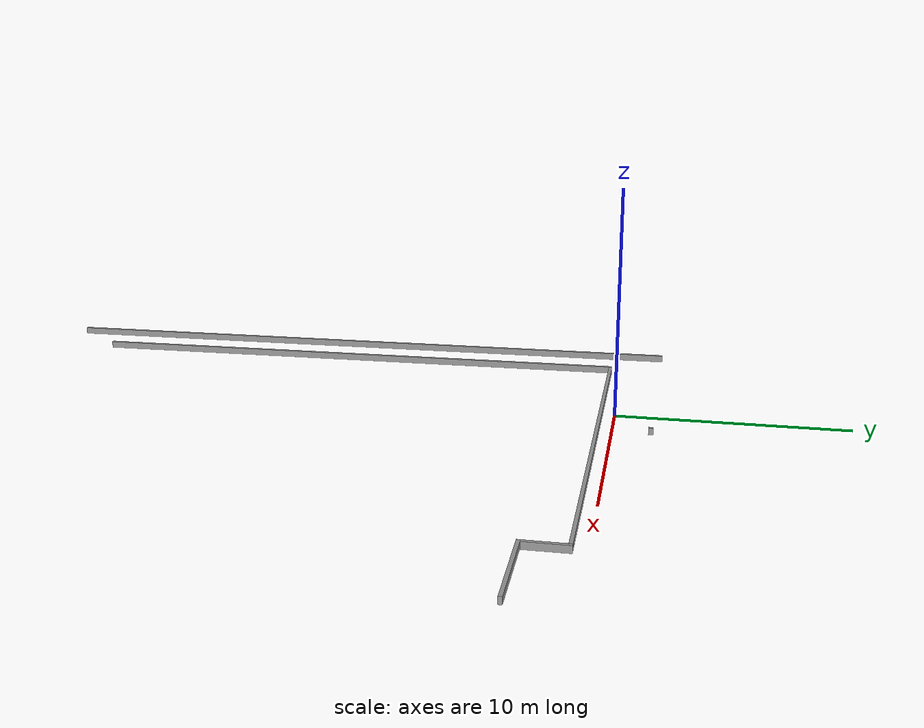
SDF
<?xml version='1.0'?>
<sdf version='1.6'>
  <model name='unit_box_map14'>
    <link name='link'>
      <pose frame=''>3.45997 -0.623895 0 0 -0 0</pose>
      <inertial>
        <mass>1</mass>
        <inertia>
          <ixx>0.166667</ixx>
          <ixy>0</ixy>
          <ixz>0</ixz>
          <iyy>0.166667</iyy>
          <iyz>0</iyz>
          <izz>0.166667</izz>
        </inertia>
        <pose frame=''>0 0 0 0 -0 0</pose>
      </inertial>
      <self_collide>0</self_collide>
      <kinematic>0</kinematic>
      <visual name='visual'>
        <geometry>
          <box>
            <size>20.4 0.15 0.3</size>
          </box>
        </geometry>
        <material>
          <script>
            <name>Gazebo/Grey</name>
            <uri>file://media/materials/scripts/gazebo.material</uri>
          </script>
          <ambient>0.3 0.3 0.3 1</ambient>
          <diffuse>0.7 0.7 0.7 1</diffuse>
          <specular>0.01 0.01 0.01 1</specular>
          <emissive>0 0 0 1</emissive>
          <shader type='vertex'>
            <normal_map>__default__</normal_map>
          </shader>
        </material>
        <pose frame=''>0 0 0 0 -0 0</pose>
        <cast_shadows>1</cast_shadows>
        <transparency>0</transparency>
      </visual>
      <collision name='collision'>
        <laser_retro>0</laser_retro>
        <max_contacts>10</max_contacts>
        <pose frame=''>0 0 0 0 -0 0</pose>
        <geometry>
          <box>
            <size>20.4 0.15 0.3</size>
          </box>
        </geometry>
        <surface>
          <friction>
            <ode>
              <mu>1</mu>
              <mu2>1</mu2>
              <fdir1>0 0 0</fdir1>
              <slip1>0</slip1>
              <slip2>0</slip2>
            </ode>
            <torsional>
              <coefficient>1</coefficient>
              <patch_radius>0</patch_radius>
              <surface_radius>0</surface_radius>
              <use_patch_radius>1</use_patch_radius>
              <ode>
                <slip>0</slip>
              </ode>
            </torsional>
          </friction>
          <bounce>
            <restitution_coefficient>0</restitution_coefficient>
            <threshold>1e+06</threshold>
          </bounce>
          <contact>
            <collide_without_contact>0</collide_without_contact>
            <collide_without_contact_bitmask>1</collide_without_contact_bitmask>
            <collide_bitmask>1</collide_bitmask>
            <ode>
              <soft_cfm>0</soft_cfm>
              <soft_erp>0.2</soft_erp>
              <kp>1e+13</kp>
              <kd>1</kd>
              <max_vel>0.01</max_vel>
              <min_depth>0</min_depth>
            </ode>
            <bullet>
              <split_impulse>1</split_impulse>
              <split_impulse_penetration_threshold>-0.01</split_impulse_penetration_threshold>
              <soft_cfm>0</soft_cfm>
              <soft_erp>0.2</soft_erp>
              <kp>1e+13</kp>
              <kd>1</kd>
            </bullet>
          </contact>
        </surface>
      </collision>
    </link>
    <link name='link_clone_0_clone'>
      <pose frame=''>1.60516 1.62127 0 0 -0 1.5707</pose>
      <inertial>
        <mass>1</mass>
        <inertia>
          <ixx>0.166667</ixx>
          <ixy>0</ixy>
          <ixz>0</ixz>
          <iyy>0.166667</iyy>
          <iyz>0</iyz>
          <izz>0.166667</izz>
        </inertia>
        <pose frame=''>0 0 0 0 -0 0</pose>
      </inertial>
      <self_collide>0</self_collide>
      <kinematic>0</kinematic>
      <visual name='visual'>
        <geometry>
          <box>
            <size>0.2 0.15 0.3</size>
          </box>
        </geometry>
        <material>
          <script>
            <name>Gazebo/Grey</name>
            <uri>file://media/materials/scripts/gazebo.material</uri>
          </script>
          <ambient>0.3 0.3 0.3 1</ambient>
          <diffuse>0.7 0.7 0.7 1</diffuse>
          <specular>0.01 0.01 0.01 1</specular>
          <emissive>0 0 0 1</emissive>
          <shader type='vertex'>
            <normal_map>__default__</normal_map>
          </shader>
        </material>
        <pose frame=''>0 0 0 0 -0 0</pose>
        <cast_shadows>1</cast_shadows>
        <transparency>0</transparency>
      </visual>
      <collision name='collision'>
        <laser_retro>0</laser_retro>
        <max_contacts>10</max_contacts>
        <pose frame=''>0 0 0 0 -0 0</pose>
        <geometry>
          <box>
            <size>0.2 0.15 0.3</size>
          </box>
        </geometry>
        <surface>
          <friction>
            <ode>
              <mu>1</mu>
              <mu2>1</mu2>
              <fdir1>0 0 0</fdir1>
              <slip1>0</slip1>
              <slip2>0</slip2>
            </ode>
            <torsional>
              <coefficient>1</coefficient>
              <patch_radius>0</patch_radius>
              <surface_radius>0</surface_radius>
              <use_patch_radius>1</use_patch_radius>
              <ode>
                <slip>0</slip>
              </ode>
            </torsional>
          </friction>
          <bounce>
            <restitution_coefficient>0</restitution_coefficient>
            <threshold>1e+06</threshold>
          </bounce>
          <contact>
            <collide_without_contact>0</collide_without_contact>
            <collide_without_contact_bitmask>1</collide_without_contact_bitmask>
            <collide_bitmask>1</collide_bitmask>
            <ode>
              <soft_cfm>0</soft_cfm>
              <soft_erp>0.2</soft_erp>
              <kp>1e+13</kp>
              <kd>1</kd>
              <max_vel>0.01</max_vel>
              <min_depth>0</min_depth>
            </ode>
            <bullet>
              <split_impulse>1</split_impulse>
              <split_impulse_penetration_threshold>-0.01</split_impulse_penetration_threshold>
              <soft_cfm>0</soft_cfm>
              <soft_erp>0.2</soft_erp>
              <kp>1e+13</kp>
              <kd>1</kd>
            </bullet>
          </contact>
        </surface>
      </collision>
    </link>
    <link name='link_clone_0_clone_0_clone_clone'>
      <pose frame=''>15.7693 -2.40821 0 0 -0 0</pose>
      <inertial>
        <mass>1</mass>
        <inertia>
          <ixx>0.166667</ixx>
          <ixy>0</ixy>
          <ixz>0</ixz>
          <iyy>0.166667</iyy>
          <iyz>0</iyz>
          <izz>0.166667</izz>
        </inertia>
        <pose frame=''>0 0 0 0 -0 0</pose>
      </inertial>
      <self_collide>0</self_collide>
      <kinematic>0</kinematic>
      <visual name='visual'>
        <geometry>
          <box>
            <size>4.21 0.15 0.3</size>
          </box>
        </geometry>
        <material>
          <script>
            <name>Gazebo/Grey</name>
            <uri>file://media/materials/scripts/gazebo.material</uri>
          </script>
          <ambient>0.3 0.3 0.3 1</ambient>
          <diffuse>0.7 0.7 0.7 1</diffuse>
          <specular>0.01 0.01 0.01 1</specular>
          <emissive>0 0 0 1</emissive>
          <shader type='vertex'>
            <normal_map>__default__</normal_map>
          </shader>
        </material>
        <pose frame=''>0 0 0 0 -0 0</pose>
        <cast_shadows>1</cast_shadows>
        <transparency>0</transparency>
      </visual>
      <collision name='collision'>
        <laser_retro>0</laser_retro>
        <max_contacts>10</max_contacts>
        <pose frame=''>0 0 0 0 -0 0</pose>
        <geometry>
          <box>
            <size>4.21 0.15 0.3</size>
          </box>
        </geometry>
        <surface>
          <friction>
            <ode>
              <mu>1</mu>
              <mu2>1</mu2>
              <fdir1>0 0 0</fdir1>
              <slip1>0</slip1>
              <slip2>0</slip2>
            </ode>
            <torsional>
              <coefficient>1</coefficient>
              <patch_radius>0</patch_radius>
              <surface_radius>0</surface_radius>
              <use_patch_radius>1</use_patch_radius>
              <ode>
                <slip>0</slip>
              </ode>
            </torsional>
          </friction>
          <bounce>
            <restitution_coefficient>0</restitution_coefficient>
            <threshold>1e+06</threshold>
          </bounce>
          <contact>
            <collide_without_contact>0</collide_without_contact>
            <collide_without_contact_bitmask>1</collide_without_contact_bitmask>
            <collide_bitmask>1</collide_bitmask>
            <ode>
              <soft_cfm>0</soft_cfm>
              <soft_erp>0.2</soft_erp>
              <kp>1e+13</kp>
              <kd>1</kd>
              <max_vel>0.01</max_vel>
              <min_depth>0</min_depth>
            </ode>
            <bullet>
              <split_impulse>1</split_impulse>
              <split_impulse_penetration_threshold>-0.01</split_impulse_penetration_threshold>
              <soft_cfm>0</soft_cfm>
              <soft_erp>0.2</soft_erp>
              <kp>1e+13</kp>
              <kd>1</kd>
            </bullet>
          </contact>
        </surface>
      </collision>
    </link>
    <link name='link_clone_0_clone_clone'>
      <pose frame=''>-8.98294 -13.5456 0 0 -0 1.584</pose>
      <inertial>
        <mass>1</mass>
        <inertia>
          <ixx>0.166667</ixx>
          <ixy>0</ixy>
          <ixz>0</ixz>
          <iyy>0.166667</iyy>
          <iyz>0</iyz>
          <izz>0.166667</izz>
        </inertia>
        <pose frame=''>0 0 0 0 -0 0</pose>
      </inertial>
      <self_collide>0</self_collide>
      <kinematic>0</kinematic>
      <visual name='visual'>
        <geometry>
          <box>
            <size>30.7 0.15 0.3</size>
          </box>
        </geometry>
        <material>
          <script>
            <name>Gazebo/Grey</name>
            <uri>file://media/materials/scripts/gazebo.material</uri>
          </script>
          <ambient>0.3 0.3 0.3 1</ambient>
          <diffuse>0.7 0.7 0.7 1</diffuse>
          <specular>0.01 0.01 0.01 1</specular>
          <emissive>0 0 0 1</emissive>
          <shader type='vertex'>
            <normal_map>__default__</normal_map>
          </shader>
        </material>
        <pose frame=''>0 0 0 0 -0 0</pose>
        <cast_shadows>1</cast_shadows>
        <transparency>0</transparency>
      </visual>
      <collision name='collision'>
        <laser_retro>0</laser_retro>
        <max_contacts>10</max_contacts>
        <pose frame=''>0 0 0 0 -0 0</pose>
        <geometry>
          <box>
            <size>30.7 0.15 0.3</size>
          </box>
        </geometry>
        <surface>
          <friction>
            <ode>
              <mu>1</mu>
              <mu2>1</mu2>
              <fdir1>0 0 0</fdir1>
              <slip1>0</slip1>
              <slip2>0</slip2>
            </ode>
            <torsional>
              <coefficient>1</coefficient>
              <patch_radius>0</patch_radius>
              <surface_radius>0</surface_radius>
              <use_patch_radius>1</use_patch_radius>
              <ode>
                <slip>0</slip>
              </ode>
            </torsional>
          </friction>
          <bounce>
            <restitution_coefficient>0</restitution_coefficient>
            <threshold>1e+06</threshold>
          </bounce>
          <contact>
            <collide_without_contact>0</collide_without_contact>
            <collide_without_contact_bitmask>1</collide_without_contact_bitmask>
            <collide_bitmask>1</collide_bitmask>
            <ode>
              <soft_cfm>0</soft_cfm>
              <soft_erp>0.2</soft_erp>
              <kp>1e+13</kp>
              <kd>1</kd>
              <max_vel>0.01</max_vel>
              <min_depth>0</min_depth>
            </ode>
            <bullet>
              <split_impulse>1</split_impulse>
              <split_impulse_penetration_threshold>-0.01</split_impulse_penetration_threshold>
              <soft_cfm>0</soft_cfm>
              <soft_erp>0.2</soft_erp>
              <kp>1e+13</kp>
              <kd>1</kd>
            </bullet>
          </contact>
        </surface>
      </collision>
    </link>
    <link name='link_clone_0_clone_clone_0_clone'>
      <pose frame=''>13.7445 -1.43771 0 0 -0 1.5707</pose>
      <inertial>
        <mass>1</mass>
        <inertia>
          <ixx>0.166667</ixx>
          <ixy>0</ixy>
          <ixz>0</ixz>
          <iyy>0.166667</iyy>
          <iyz>0</iyz>
          <izz>0.166667</izz>
        </inertia>
        <pose frame=''>0 0 0 0 -0 0</pose>
      </inertial>
      <self_collide>0</self_collide>
      <kinematic>0</kinematic>
      <visual name='visual'>
        <geometry>
          <box>
            <size>1.78 0.15 0.3</size>
          </box>
        </geometry>
        <material>
          <script>
            <name>Gazebo/Grey</name>
            <uri>file://media/materials/scripts/gazebo.material</uri>
          </script>
          <ambient>0.3 0.3 0.3 1</ambient>
          <diffuse>0.7 0.7 0.7 1</diffuse>
          <specular>0.01 0.01 0.01 1</specular>
          <emissive>0 0 0 1</emissive>
          <shader type='vertex'>
            <normal_map>__default__</normal_map>
          </shader>
        </material>
        <pose frame=''>0 0 0 0 -0 0</pose>
        <cast_shadows>1</cast_shadows>
        <transparency>0</transparency>
      </visual>
      <collision name='collision'>
        <laser_retro>0</laser_retro>
        <max_contacts>10</max_contacts>
        <pose frame=''>0 0 0 0 -0 0</pose>
        <geometry>
          <box>
            <size>1.78 0.15 0.3</size>
          </box>
        </geometry>
        <surface>
          <friction>
            <ode>
              <mu>1</mu>
              <mu2>1</mu2>
              <fdir1>0 0 0</fdir1>
              <slip1>0</slip1>
              <slip2>0</slip2>
            </ode>
            <torsional>
              <coefficient>1</coefficient>
              <patch_radius>0</patch_radius>
              <surface_radius>0</surface_radius>
              <use_patch_radius>1</use_patch_radius>
              <ode>
                <slip>0</slip>
              </ode>
            </torsional>
          </friction>
          <bounce>
            <restitution_coefficient>0</restitution_coefficient>
            <threshold>1e+06</threshold>
          </bounce>
          <contact>
            <collide_without_contact>0</collide_without_contact>
            <collide_without_contact_bitmask>1</collide_without_contact_bitmask>
            <collide_bitmask>1</collide_bitmask>
            <ode>
              <soft_cfm>0</soft_cfm>
              <soft_erp>0.2</soft_erp>
              <kp>1e+13</kp>
              <kd>1</kd>
              <max_vel>0.01</max_vel>
              <min_depth>0</min_depth>
            </ode>
            <bullet>
              <split_impulse>1</split_impulse>
              <split_impulse_penetration_threshold>-0.01</split_impulse_penetration_threshold>
              <soft_cfm>0</soft_cfm>
              <soft_erp>0.2</soft_erp>
              <kp>1e+13</kp>
              <kd>1</kd>
            </bullet>
          </contact>
        </surface>
      </collision>
    </link>
    <link name='link_clone_0_clone_clone_0_clone_clone_0_clone_0'>
      <pose frame=''>-6.6656 -13.4748 0 0 -0 1.584</pose>
      <inertial>
        <mass>1</mass>
        <inertia>
          <ixx>0.166667</ixx>
          <ixy>0</ixy>
          <ixz>0</ixz>
          <iyy>0.166667</iyy>
          <iyz>0</iyz>
          <izz>0.166667</izz>
        </inertia>
        <pose frame=''>0 0 0 0 -0 0</pose>
      </inertial>
      <self_collide>0</self_collide>
      <kinematic>0</kinematic>
      <visual name='visual'>
        <geometry>
          <box>
            <size>25.8 0.15 0.3</size>
          </box>
        </geometry>
        <material>
          <script>
            <name>Gazebo/Grey</name>
            <uri>file://media/materials/scripts/gazebo.material</uri>
          </script>
          <ambient>0.3 0.3 0.3 1</ambient>
          <diffuse>0.7 0.7 0.7 1</diffuse>
          <specular>0.01 0.01 0.01 1</specular>
          <emissive>0 0 0 1</emissive>
          <shader type='vertex'>
            <normal_map>__default__</normal_map>
          </shader>
        </material>
        <pose frame=''>0 0 0 0 -0 0</pose>
        <cast_shadows>1</cast_shadows>
        <transparency>0</transparency>
      </visual>
      <collision name='collision'>
        <laser_retro>0</laser_retro>
        <max_contacts>10</max_contacts>
        <pose frame=''>0 0 0 0 -0 0</pose>
        <geometry>
          <box>
            <size>25.8 0.15 0.3</size>
          </box>
        </geometry>
        <surface>
          <friction>
            <ode>
              <mu>1</mu>
              <mu2>1</mu2>
              <fdir1>0 0 0</fdir1>
              <slip1>0</slip1>
              <slip2>0</slip2>
            </ode>
            <torsional>
              <coefficient>1</coefficient>
              <patch_radius>0</patch_radius>
              <surface_radius>0</surface_radius>
              <use_patch_radius>1</use_patch_radius>
              <ode>
                <slip>0</slip>
              </ode>
            </torsional>
          </friction>
          <bounce>
            <restitution_coefficient>0</restitution_coefficient>
            <threshold>1e+06</threshold>
          </bounce>
          <contact>
            <collide_without_contact>0</collide_without_contact>
            <collide_without_contact_bitmask>1</collide_without_contact_bitmask>
            <collide_bitmask>1</collide_bitmask>
            <ode>
              <soft_cfm>0</soft_cfm>
              <soft_erp>0.2</soft_erp>
              <kp>1e+13</kp>
              <kd>1</kd>
              <max_vel>0.01</max_vel>
              <min_depth>0</min_depth>
            </ode>
            <bullet>
              <split_impulse>1</split_impulse>
              <split_impulse_penetration_threshold>-0.01</split_impulse_penetration_threshold>
              <soft_cfm>0</soft_cfm>
              <soft_erp>0.2</soft_erp>
              <kp>1e+13</kp>
              <kd>1</kd>
            </bullet>
          </contact>
        </surface>
      </collision>
    </link>
    <static>1</static>
    <allow_auto_disable>0</allow_auto_disable>
  </model>
</sdf>
